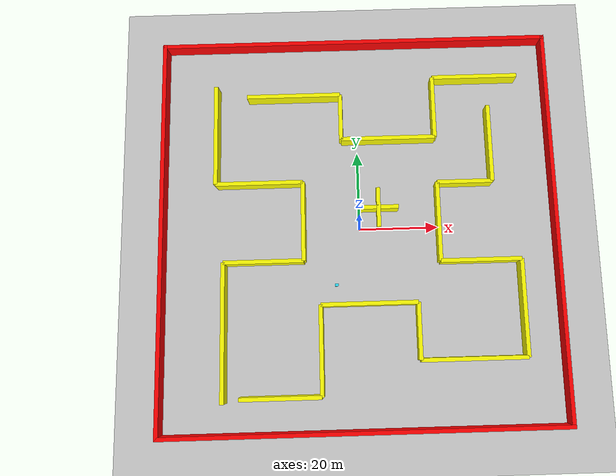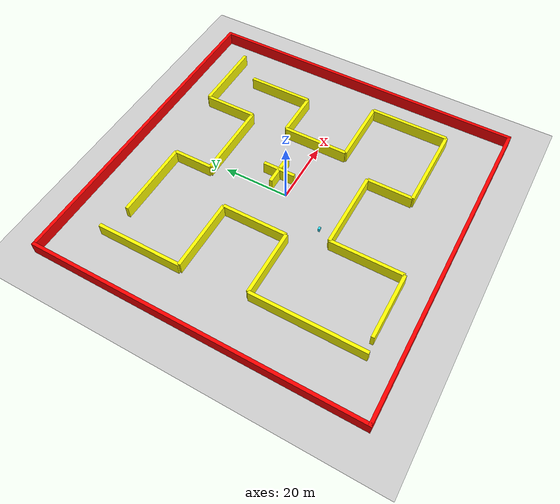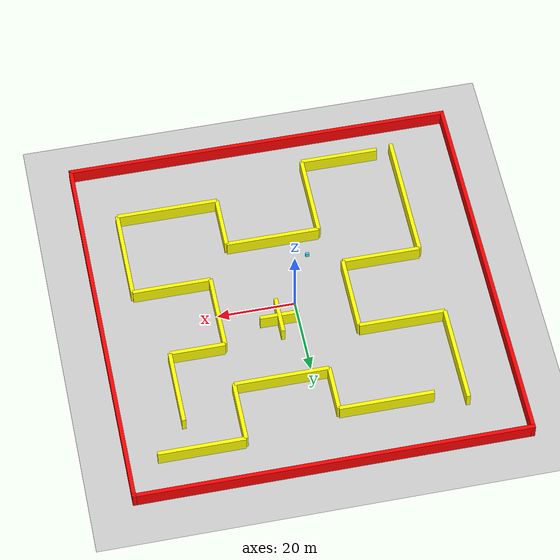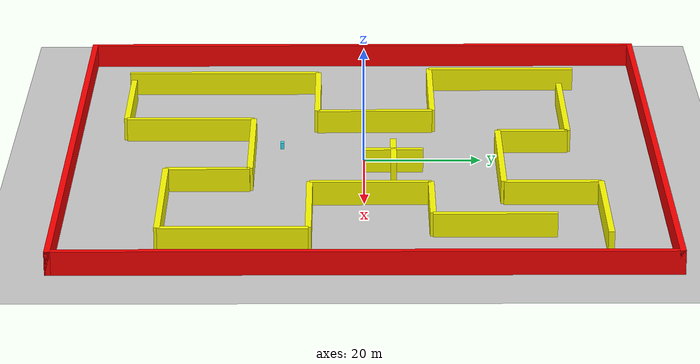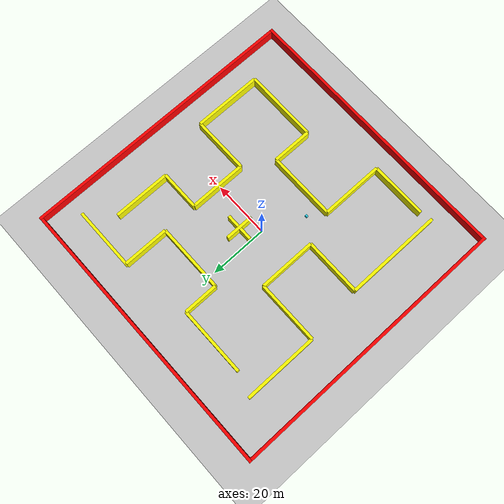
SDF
<sdf version="1.8">
 <world name="semantic_segmentation_world">
  <model name="ground_plane">
   <static>true</static>
   <link name="link">
    <collision name="collision">
     <geometry><plane><normal>0 0 1</normal><size>120 120</size></plane></geometry>
     <surface><friction><ode><mu>100</mu><mu2>50</mu2></ode></friction></surface>
    </collision>
    <visual name="visual">
     <geometry><plane><normal>0 0 1</normal><size>100 100</size></plane></geometry>
     <material>
      <ambient>0.8 0.8 0.8 1</ambient>
      <diffuse>0.8 0.8 0.8 1</diffuse>
      <specular>0.8 0.8 0.8 1</specular>
     </material>
    </visual>
   </link>
  </model>
  <model name="outer_boundary">
   <static>true</static>
   <link name="walls">
    <collision name="north_collision">
     <pose>0 49.5 2 0 0 0</pose>
     <geometry><box><size>100 1 4</size></box></geometry>
    </collision>
    <visual name="north_visual">
     <pose>0 49.5 2 0 0 0</pose>
     <geometry><box><size>100 1 4</size></box></geometry>
     <material><ambient>1 0 0 1</ambient><diffuse>1 0 0 1</diffuse></material>
    </visual>
    <collision name="south_collision">
     <pose>0 -49.5 2 0 0 0</pose>
     <geometry><box><size>100 1 4</size></box></geometry>
    </collision>
    <visual name="south_visual">
     <pose>0 -49.5 2 0 0 0</pose>
     <geometry><box><size>100 1 4</size></box></geometry>
     <material><ambient>1 0 0 1</ambient><diffuse>1 0 0 1</diffuse></material>
    </visual>
    <collision name="east_collision">
     <pose>49.5 0 2 0 0 0</pose>
     <geometry><box><size>1 100 4</size></box></geometry>
    </collision>
    <visual name="east_visual">
     <pose>49.5 0 2 0 0 0</pose>
     <geometry><box><size>1 100 4</size></box></geometry>
     <material><ambient>1 0 0 1</ambient><diffuse>1 0 0 1</diffuse></material>
    </visual>
    <collision name="west_collision">
     <pose>-49.5 0 2 0 0 0</pose>
     <geometry><box><size>1 100 4</size></box></geometry>
    </collision>
    <visual name="west_visual">
     <pose>-49.5 0 2 0 0 0</pose>
     <geometry><box><size>1 100 4</size></box></geometry>
     <material><ambient>1 0 0 1</ambient><diffuse>1 0 0 1</diffuse></material>
    </visual>
   </link>
   <plugin filename="ignition-gazebo-label-system" name="ignition::gazebo::systems::Label">
    <label>4</label>
   </plugin>
  </model>
  <model name="large_bent_maze">
   <static>true</static>
   <link name="maze_walls">
    <collision name="m01c">
     <pose>-34 -25 2 0 0 0</pose>
     <geometry><box><size>1 34 4</size></box></geometry>
    </collision>
    <visual name="m01v">
     <pose>-34 -25 2 0 0 0</pose>
     <geometry><box><size>1 34 4</size></box></geometry>
     <material><ambient>1 1 0 1</ambient><diffuse>1 1 0 1</diffuse></material>
    </visual>
    <collision name="m02c">
     <pose>-24 -8 2 0 0 0</pose>
     <geometry><box><size>20 1 4</size></box></geometry>
    </collision>
    <visual name="m02v">
     <pose>-24 -8 2 0 0 0</pose>
     <geometry><box><size>20 1 4</size></box></geometry>
     <material><ambient>1 1 0 1</ambient><diffuse>1 1 0 1</diffuse></material>
    </visual>
    <collision name="m03c">
     <pose>-14 2 2 0 0 0</pose>
     <geometry><box><size>1 20 4</size></box></geometry>
    </collision>
    <visual name="m03v">
     <pose>-14 2 2 0 0 0</pose>
     <geometry><box><size>1 20 4</size></box></geometry>
     <material><ambient>1 1 0 1</ambient><diffuse>1 1 0 1</diffuse></material>
    </visual>
    <collision name="m04c">
     <pose>-25 12 2 0 0 0</pose>
     <geometry><box><size>22 1 4</size></box></geometry>
    </collision>
    <visual name="m04v">
     <pose>-25 12 2 0 0 0</pose>
     <geometry><box><size>22 1 4</size></box></geometry>
     <material><ambient>1 1 0 1</ambient><diffuse>1 1 0 1</diffuse></material>
    </visual>
    <collision name="m05c">
     <pose>-36 25 2 0 0 0</pose>
     <geometry><box><size>1 26 4</size></box></geometry>
    </collision>
    <visual name="m05v">
     <pose>-36 25 2 0 0 0</pose>
     <geometry><box><size>1 26 4</size></box></geometry>
     <material><ambient>1 1 0 1</ambient><diffuse>1 1 0 1</diffuse></material>
    </visual>
    <collision name="m06c">
     <pose>-16 35 2 0 0 0</pose>
     <geometry><box><size>24 1 4</size></box></geometry>
    </collision>
    <visual name="m06v">
     <pose>-16 35 2 0 0 0</pose>
     <geometry><box><size>24 1 4</size></box></geometry>
     <material><ambient>1 1 0 1</ambient><diffuse>1 1 0 1</diffuse></material>
    </visual>
    <collision name="m07c">
     <pose>-4 29 2 0 0 0</pose>
     <geometry><box><size>1 12 4</size></box></geometry>
    </collision>
    <visual name="m07v">
     <pose>-4 29 2 0 0 0</pose>
     <geometry><box><size>1 12 4</size></box></geometry>
     <material><ambient>1 1 0 1</ambient><diffuse>1 1 0 1</diffuse></material>
    </visual>
    <collision name="m08c">
     <pose>8 23 2 0 0 0</pose>
     <geometry><box><size>24 1 4</size></box></geometry>
    </collision>
    <visual name="m08v">
     <pose>8 23 2 0 0 0</pose>
     <geometry><box><size>24 1 4</size></box></geometry>
     <material><ambient>1 1 0 1</ambient><diffuse>1 1 0 1</diffuse></material>
    </visual>
    <collision name="m09c">
     <pose>20 31 2 0 0 0</pose>
     <geometry><box><size>1 16 4</size></box></geometry>
    </collision>
    <visual name="m09v">
     <pose>20 31 2 0 0 0</pose>
     <geometry><box><size>1 16 4</size></box></geometry>
     <material><ambient>1 1 0 1</ambient><diffuse>1 1 0 1</diffuse></material>
    </visual>
    <collision name="m10c">
     <pose>31 39 2 0 0 0</pose>
     <geometry><box><size>22 1 4</size></box></geometry>
    </collision>
    <visual name="m10v">
     <pose>31 39 2 0 0 0</pose>
     <geometry><box><size>22 1 4</size></box></geometry>
     <material><ambient>1 1 0 1</ambient><diffuse>1 1 0 1</diffuse></material>
    </visual>
    <collision name="m11c">
     <pose>34 21 2 0 0 0</pose>
     <geometry><box><size>1 20 4</size></box></geometry>
    </collision>
    <visual name="m11v">
     <pose>34 21 2 0 0 0</pose>
     <geometry><box><size>1 20 4</size></box></geometry>
     <material><ambient>1 1 0 1</ambient><diffuse>1 1 0 1</diffuse></material>
    </visual>
    <collision name="m12c">
     <pose>27 11 2 0 0 0</pose>
     <geometry><box><size>14 1 4</size></box></geometry>
    </collision>
    <visual name="m12v">
     <pose>27 11 2 0 0 0</pose>
     <geometry><box><size>14 1 4</size></box></geometry>
     <material><ambient>1 1 0 1</ambient><diffuse>1 1 0 1</diffuse></material>
    </visual>
    <collision name="m13c">
     <pose>20 1 2 0 0 0</pose>
     <geometry><box><size>1 20 4</size></box></geometry>
    </collision>
    <visual name="m13v">
     <pose>20 1 2 0 0 0</pose>
     <geometry><box><size>1 20 4</size></box></geometry>
     <material><ambient>1 1 0 1</ambient><diffuse>1 1 0 1</diffuse></material>
    </visual>
    <collision name="m14c">
     <pose>30 -9 2 0 0 0</pose>
     <geometry><box><size>20 1 4</size></box></geometry>
    </collision>
    <visual name="m14v">
     <pose>30 -9 2 0 0 0</pose>
     <geometry><box><size>20 1 4</size></box></geometry>
     <material><ambient>1 1 0 1</ambient><diffuse>1 1 0 1</diffuse></material>
    </visual>
    <collision name="m15c">
     <pose>40 -21 2 0 0 0</pose>
     <geometry><box><size>1 24 4</size></box></geometry>
    </collision>
    <visual name="m15v">
     <pose>40 -21 2 0 0 0</pose>
     <geometry><box><size>1 24 4</size></box></geometry>
     <material><ambient>1 1 0 1</ambient><diffuse>1 1 0 1</diffuse></material>
    </visual>
    <collision name="m16c">
     <pose>27 -33 2 0 0 0</pose>
     <geometry><box><size>26 1 4</size></box></geometry>
    </collision>
    <visual name="m16v">
     <pose>27 -33 2 0 0 0</pose>
     <geometry><box><size>26 1 4</size></box></geometry>
     <material><ambient>1 1 0 1</ambient><diffuse>1 1 0 1</diffuse></material>
    </visual>
    <collision name="m17c">
     <pose>14 -26 2 0 0 0</pose>
     <geometry><box><size>1 14 4</size></box></geometry>
    </collision>
    <visual name="m17v">
     <pose>14 -26 2 0 0 0</pose>
     <geometry><box><size>1 14 4</size></box></geometry>
     <material><ambient>1 1 0 1</ambient><diffuse>1 1 0 1</diffuse></material>
    </visual>
    <collision name="m18c">
     <pose>2 -19 2 0 0 0</pose>
     <geometry><box><size>24 1 4</size></box></geometry>
    </collision>
    <visual name="m18v">
     <pose>2 -19 2 0 0 0</pose>
     <geometry><box><size>24 1 4</size></box></geometry>
     <material><ambient>1 1 0 1</ambient><diffuse>1 1 0 1</diffuse></material>
    </visual>
    <collision name="m19c">
     <pose>-10 -30 2 0 0 0</pose>
     <geometry><box><size>1 22 4</size></box></geometry>
    </collision>
    <visual name="m19v">
     <pose>-10 -30 2 0 0 0</pose>
     <geometry><box><size>1 22 4</size></box></geometry>
     <material><ambient>1 1 0 1</ambient><diffuse>1 1 0 1</diffuse></material>
    </visual>
    <collision name="m20c">
     <pose>-20 -41 2 0 0 0</pose>
     <geometry><box><size>20 1 4</size></box></geometry>
    </collision>
    <visual name="m20v">
     <pose>-20 -41 2 0 0 0</pose>
     <geometry><box><size>20 1 4</size></box></geometry>
     <material><ambient>1 1 0 1</ambient><diffuse>1 1 0 1</diffuse></material>
    </visual>
    <collision name="m21c"><pose>5 5 2 0 0 0</pose><geometry><box><size>10 1 4</size></box></geometry></collision>
    <visual name="m21v">
     <pose>5 5 2 0 0 0</pose>
     <geometry><box><size>10 1 4</size></box></geometry>
     <material><ambient>1 1 0 1</ambient><diffuse>1 1 0 1</diffuse></material>
    </visual>
    <collision name="m22c"><pose>5 5 2 0 0 0</pose><geometry><box><size>1 10 4</size></box></geometry></collision>
    <visual name="m22v">
     <pose>5 5 2 0 0 0</pose>
     <geometry><box><size>1 10 4</size></box></geometry>
     <material><ambient>1 1 0 1</ambient><diffuse>1 1 0 1</diffuse></material>
    </visual>
   </link>
   <plugin filename="ignition-gazebo-label-system" name="ignition::gazebo::systems::Label">
    <label>5</label>
   </plugin>
  </model>
  <model name="dynamic_obstacle_7">
   <static>true</static>
   <pose>-6 -14 0.55 0 0 0</pose>
   <link name="body">
    <inertial><mass>1</mass><inertia><ixx>0.1</ixx><iyy>0.1</iyy><izz>0.1</izz></inertia></inertial>
    <velocity_decay><linear>0.4</linear><angular>0.8</angular></velocity_decay>
    <collision name="collision">
     <geometry><box><size>0.9 0.6 1.1</size></box></geometry>
     <surface><friction><ode><mu>0.2</mu><mu2>0.2</mu2></ode></friction></surface>
    </collision>
    <visual name="visual">
     <geometry><box><size>0.9 0.6 1.1</size></box></geometry>
     <material><ambient>0.2 0.9 1 1</ambient><diffuse>0.2 0.9 1 1</diffuse></material>
    </visual>
   </link>
   <plugin filename="ignition-gazebo-label-system" name="ignition::gazebo::systems::Label">
    <label>5</label>
   </plugin>
   <plugin filename="libssmi_periodic_motion_system.so" name="semantic_segmentation_husky::PeriodicMotionSystem">
    <offset>14 0 0</offset>
    <period>42</period>
    <phase>10.5</phase>
   </plugin>
  </model>
 </world>
</sdf>
